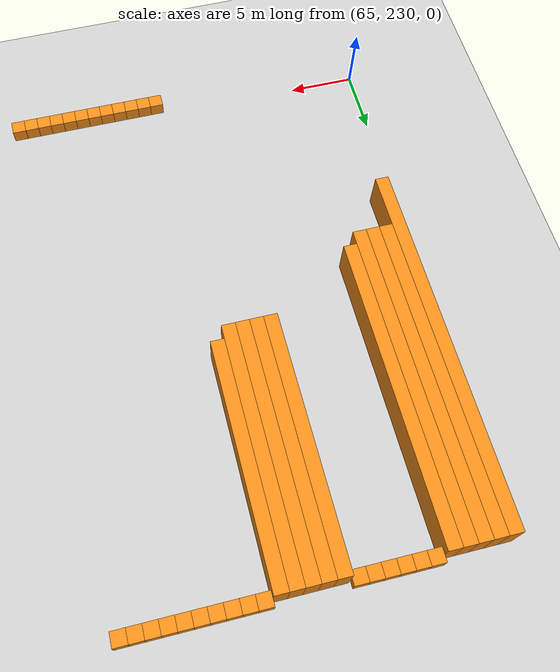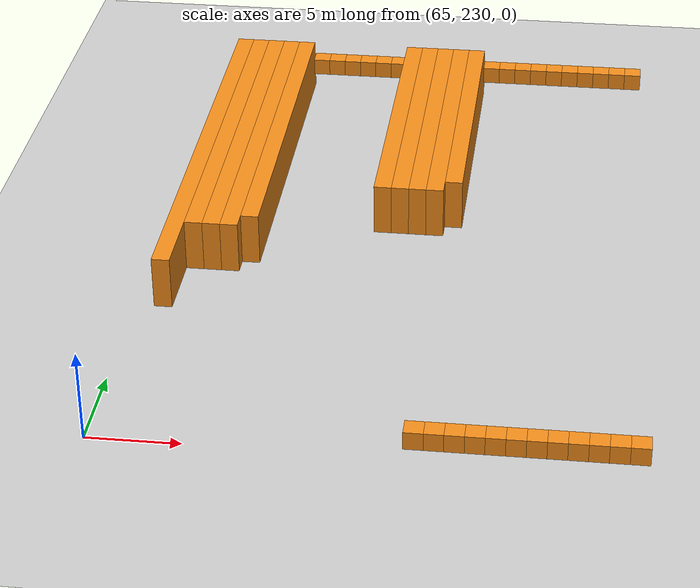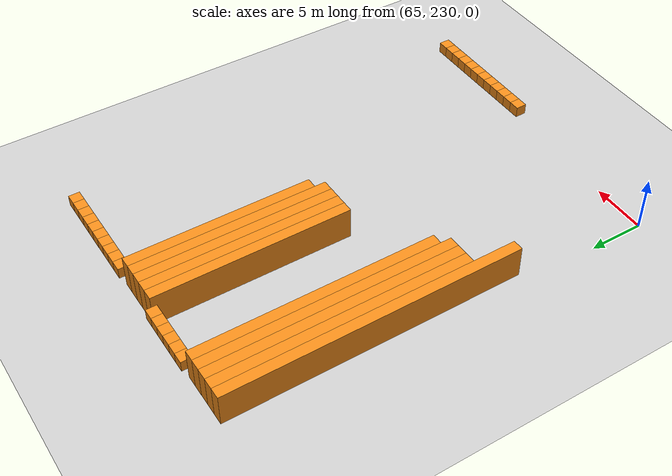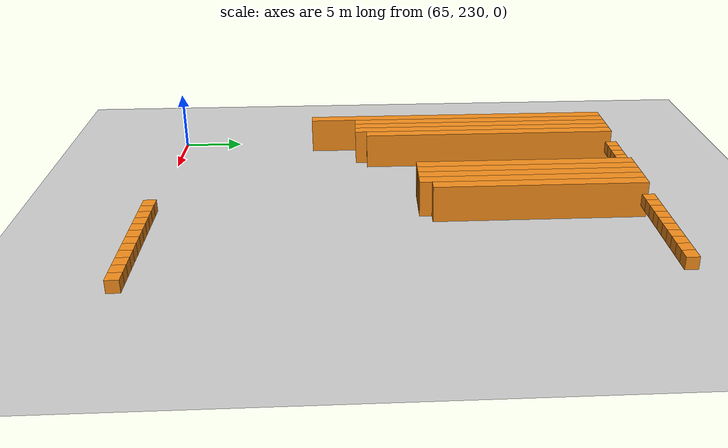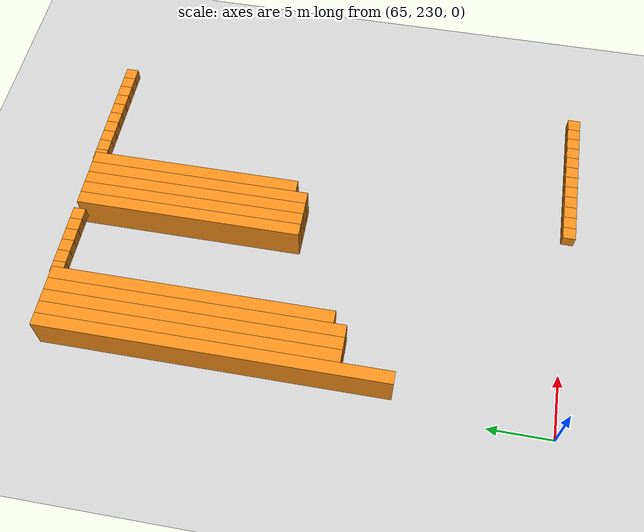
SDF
<sdf version="1.6">
 <world name="default">
  <include><uri>model://ground_plane</uri></include>
  <model name="unit_box_722">
   <pose>66.50   255.50     1.50 0 0 0</pose>
   <static>1</static>
   <link name="link">
    <inertial>
     <mass>5000</mass>
     <inertia><ixx>200</ixx><ixy>0</ixy><ixz>0</ixz><iyy>200</iyy><iyz>0</iyz><izz>200</izz></inertia>
    </inertial>
    <collision name="collision"><geometry><box><size>1 27 3</size></box></geometry></collision>
    <visual name="visual">
     <geometry><box><size>1 27 3</size></box></geometry>
     <material>
      <script><name>Gazebo/Orange</name><uri>file://media/materials/scripts/gazebo.material</uri></script>
     </material>
    </visual>
   </link>
  </model>
  <model name="unit_box_732">
   <pose>67.50   257.50     1.50 0 0 0</pose>
   <static>1</static>
   <link name="link">
    <inertial>
     <mass>5000</mass>
     <inertia><ixx>200</ixx><ixy>0</ixy><ixz>0</ixz><iyy>200</iyy><iyz>0</iyz><izz>200</izz></inertia>
    </inertial>
    <collision name="collision"><geometry><box><size>1 23 3</size></box></geometry></collision>
    <visual name="visual">
     <geometry><box><size>1 23 3</size></box></geometry>
     <material>
      <script><name>Gazebo/Orange</name><uri>file://media/materials/scripts/gazebo.material</uri></script>
     </material>
    </visual>
   </link>
  </model>
  <model name="unit_box_742">
   <pose>68.50   257.50     1.50 0 0 0</pose>
   <static>1</static>
   <link name="link">
    <inertial>
     <mass>5000</mass>
     <inertia><ixx>200</ixx><ixy>0</ixy><ixz>0</ixz><iyy>200</iyy><iyz>0</iyz><izz>200</izz></inertia>
    </inertial>
    <collision name="collision"><geometry><box><size>1 23 3</size></box></geometry></collision>
    <visual name="visual">
     <geometry><box><size>1 23 3</size></box></geometry>
     <material>
      <script><name>Gazebo/Orange</name><uri>file://media/materials/scripts/gazebo.material</uri></script>
     </material>
    </visual>
   </link>
  </model>
  <model name="unit_box_752">
   <pose>69.50   257.50     1.50 0 0 0</pose>
   <static>1</static>
   <link name="link">
    <inertial>
     <mass>5000</mass>
     <inertia><ixx>200</ixx><ixy>0</ixy><ixz>0</ixz><iyy>200</iyy><iyz>0</iyz><izz>200</izz></inertia>
    </inertial>
    <collision name="collision"><geometry><box><size>1 23 3</size></box></geometry></collision>
    <visual name="visual">
     <geometry><box><size>1 23 3</size></box></geometry>
     <material>
      <script><name>Gazebo/Orange</name><uri>file://media/materials/scripts/gazebo.material</uri></script>
     </material>
    </visual>
   </link>
  </model>
  <model name="unit_box_763">
   <pose>70.50   258.00     1.50 0 0 0</pose>
   <static>1</static>
   <link name="link">
    <inertial>
     <mass>5000</mass>
     <inertia><ixx>200</ixx><ixy>0</ixy><ixz>0</ixz><iyy>200</iyy><iyz>0</iyz><izz>200</izz></inertia>
    </inertial>
    <collision name="collision"><geometry><box><size>1 22 3</size></box></geometry></collision>
    <visual name="visual">
     <geometry><box><size>1 22 3</size></box></geometry>
     <material>
      <script><name>Gazebo/Orange</name><uri>file://media/materials/scripts/gazebo.material</uri></script>
     </material>
    </visual>
   </link>
  </model>
  <model name="unit_box_774">
   <pose>71.50   269.00     1.50 0 0 0</pose>
   <static>1</static>
   <link name="link">
    <inertial>
     <mass>5000</mass>
     <inertia><ixx>200</ixx><ixy>0</ixy><ixz>0</ixz><iyy>200</iyy><iyz>0</iyz><izz>200</izz></inertia>
    </inertial>
    <collision name="collision"><geometry><box><size>1 1 1</size></box></geometry></collision>
    <visual name="visual">
     <geometry><box><size>1 1 1</size></box></geometry>
     <material>
      <script><name>Gazebo/Orange</name><uri>file://media/materials/scripts/gazebo.material</uri></script>
     </material>
    </visual>
   </link>
  </model>
  <model name="unit_box_783">
   <pose>72.50   269.00     1.50 0 0 0</pose>
   <static>1</static>
   <link name="link">
    <inertial>
     <mass>5000</mass>
     <inertia><ixx>200</ixx><ixy>0</ixy><ixz>0</ixz><iyy>200</iyy><iyz>0</iyz><izz>200</izz></inertia>
    </inertial>
    <collision name="collision"><geometry><box><size>1 1 1</size></box></geometry></collision>
    <visual name="visual">
     <geometry><box><size>1 1 1</size></box></geometry>
     <material>
      <script><name>Gazebo/Orange</name><uri>file://media/materials/scripts/gazebo.material</uri></script>
     </material>
    </visual>
   </link>
  </model>
  <model name="unit_box_790">
   <pose>73.50   269.00     1.50 0 0 0</pose>
   <static>1</static>
   <link name="link">
    <inertial>
     <mass>5000</mass>
     <inertia><ixx>200</ixx><ixy>0</ixy><ixz>0</ixz><iyy>200</iyy><iyz>0</iyz><izz>200</izz></inertia>
    </inertial>
    <collision name="collision"><geometry><box><size>1 1 1</size></box></geometry></collision>
    <visual name="visual">
     <geometry><box><size>1 1 1</size></box></geometry>
     <material>
      <script><name>Gazebo/Orange</name><uri>file://media/materials/scripts/gazebo.material</uri></script>
     </material>
    </visual>
   </link>
  </model>
  <model name="unit_box_797">
   <pose>74.50   269.00     1.50 0 0 0</pose>
   <static>1</static>
   <link name="link">
    <inertial>
     <mass>5000</mass>
     <inertia><ixx>200</ixx><ixy>0</ixy><ixz>0</ixz><iyy>200</iyy><iyz>0</iyz><izz>200</izz></inertia>
    </inertial>
    <collision name="collision"><geometry><box><size>1 1 1</size></box></geometry></collision>
    <visual name="visual">
     <geometry><box><size>1 1 1</size></box></geometry>
     <material>
      <script><name>Gazebo/Orange</name><uri>file://media/materials/scripts/gazebo.material</uri></script>
     </material>
    </visual>
   </link>
  </model>
  <model name="unit_box_803">
   <pose>75.50   269.00     1.50 0 0 0</pose>
   <static>1</static>
   <link name="link">
    <inertial>
     <mass>5000</mass>
     <inertia><ixx>200</ixx><ixy>0</ixy><ixz>0</ixz><iyy>200</iyy><iyz>0</iyz><izz>200</izz></inertia>
    </inertial>
    <collision name="collision"><geometry><box><size>1 1 1</size></box></geometry></collision>
    <visual name="visual">
     <geometry><box><size>1 1 1</size></box></geometry>
     <material>
      <script><name>Gazebo/Orange</name><uri>file://media/materials/scripts/gazebo.material</uri></script>
     </material>
    </visual>
   </link>
  </model>
  <model name="unit_box_809">
   <pose>76.50   269.00     1.50 0 0 0</pose>
   <static>1</static>
   <link name="link">
    <inertial>
     <mass>5000</mass>
     <inertia><ixx>200</ixx><ixy>0</ixy><ixz>0</ixz><iyy>200</iyy><iyz>0</iyz><izz>200</izz></inertia>
    </inertial>
    <collision name="collision"><geometry><box><size>1 1 1</size></box></geometry></collision>
    <visual name="visual">
     <geometry><box><size>1 1 1</size></box></geometry>
     <material>
      <script><name>Gazebo/Orange</name><uri>file://media/materials/scripts/gazebo.material</uri></script>
     </material>
    </visual>
   </link>
  </model>
  <model name="unit_box_815">
   <pose>77.50   260.00     1.50 0 0 0</pose>
   <static>1</static>
   <link name="link">
    <inertial>
     <mass>5000</mass>
     <inertia><ixx>200</ixx><ixy>0</ixy><ixz>0</ixz><iyy>200</iyy><iyz>0</iyz><izz>200</izz></inertia>
    </inertial>
    <collision name="collision"><geometry><box><size>1 18 3</size></box></geometry></collision>
    <visual name="visual">
     <geometry><box><size>1 18 3</size></box></geometry>
     <material>
      <script><name>Gazebo/Orange</name><uri>file://media/materials/scripts/gazebo.material</uri></script>
     </material>
    </visual>
   </link>
  </model>
  <model name="unit_box_822">
   <pose>78.50   260.00     1.50 0 0 0</pose>
   <static>1</static>
   <link name="link">
    <inertial>
     <mass>5000</mass>
     <inertia><ixx>200</ixx><ixy>0</ixy><ixz>0</ixz><iyy>200</iyy><iyz>0</iyz><izz>200</izz></inertia>
    </inertial>
    <collision name="collision"><geometry><box><size>1 18 3</size></box></geometry></collision>
    <visual name="visual">
     <geometry><box><size>1 18 3</size></box></geometry>
     <material>
      <script><name>Gazebo/Orange</name><uri>file://media/materials/scripts/gazebo.material</uri></script>
     </material>
    </visual>
   </link>
  </model>
  <model name="unit_box_829">
   <pose>79.50   260.00     1.50 0 0 0</pose>
   <static>1</static>
   <link name="link">
    <inertial>
     <mass>5000</mass>
     <inertia><ixx>200</ixx><ixy>0</ixy><ixz>0</ixz><iyy>200</iyy><iyz>0</iyz><izz>200</izz></inertia>
    </inertial>
    <collision name="collision"><geometry><box><size>1 18 3</size></box></geometry></collision>
    <visual name="visual">
     <geometry><box><size>1 18 3</size></box></geometry>
     <material>
      <script><name>Gazebo/Orange</name><uri>file://media/materials/scripts/gazebo.material</uri></script>
     </material>
    </visual>
   </link>
  </model>
  <model name="unit_box_836">
   <pose>80.50   260.00     1.50 0 0 0</pose>
   <static>1</static>
   <link name="link">
    <inertial>
     <mass>5000</mass>
     <inertia><ixx>200</ixx><ixy>0</ixy><ixz>0</ixz><iyy>200</iyy><iyz>0</iyz><izz>200</izz></inertia>
    </inertial>
    <collision name="collision"><geometry><box><size>1 18 3</size></box></geometry></collision>
    <visual name="visual">
     <geometry><box><size>1 18 3</size></box></geometry>
     <material>
      <script><name>Gazebo/Orange</name><uri>file://media/materials/scripts/gazebo.material</uri></script>
     </material>
    </visual>
   </link>
  </model>
  <model name="unit_box_850">
   <pose>81.50   230.00     1.50 0 0 0</pose>
   <static>1</static>
   <link name="link">
    <inertial>
     <mass>5000</mass>
     <inertia><ixx>200</ixx><ixy>0</ixy><ixz>0</ixz><iyy>200</iyy><iyz>0</iyz><izz>200</izz></inertia>
    </inertial>
    <collision name="collision"><geometry><box><size>1 1 1</size></box></geometry></collision>
    <visual name="visual">
     <geometry><box><size>1 1 1</size></box></geometry>
     <material>
      <script><name>Gazebo/Orange</name><uri>file://media/materials/scripts/gazebo.material</uri></script>
     </material>
    </visual>
   </link>
  </model>
  <model name="unit_box_851">
   <pose>81.50   260.50     1.50 0 0 0</pose>
   <static>1</static>
   <link name="link">
    <inertial>
     <mass>5000</mass>
     <inertia><ixx>200</ixx><ixy>0</ixy><ixz>0</ixz><iyy>200</iyy><iyz>0</iyz><izz>200</izz></inertia>
    </inertial>
    <collision name="collision"><geometry><box><size>1 17 3</size></box></geometry></collision>
    <visual name="visual">
     <geometry><box><size>1 17 3</size></box></geometry>
     <material>
      <script><name>Gazebo/Orange</name><uri>file://media/materials/scripts/gazebo.material</uri></script>
     </material>
    </visual>
   </link>
  </model>
  <model name="unit_box_864">
   <pose>82.50   230.00     1.50 0 0 0</pose>
   <static>1</static>
   <link name="link">
    <inertial>
     <mass>5000</mass>
     <inertia><ixx>200</ixx><ixy>0</ixy><ixz>0</ixz><iyy>200</iyy><iyz>0</iyz><izz>200</izz></inertia>
    </inertial>
    <collision name="collision"><geometry><box><size>1 1 1</size></box></geometry></collision>
    <visual name="visual">
     <geometry><box><size>1 1 1</size></box></geometry>
     <material>
      <script><name>Gazebo/Orange</name><uri>file://media/materials/scripts/gazebo.material</uri></script>
     </material>
    </visual>
   </link>
  </model>
  <model name="unit_box_865">
   <pose>82.50   269.00     1.50 0 0 0</pose>
   <static>1</static>
   <link name="link">
    <inertial>
     <mass>5000</mass>
     <inertia><ixx>200</ixx><ixy>0</ixy><ixz>0</ixz><iyy>200</iyy><iyz>0</iyz><izz>200</izz></inertia>
    </inertial>
    <collision name="collision"><geometry><box><size>1 1 1</size></box></geometry></collision>
    <visual name="visual">
     <geometry><box><size>1 1 1</size></box></geometry>
     <material>
      <script><name>Gazebo/Orange</name><uri>file://media/materials/scripts/gazebo.material</uri></script>
     </material>
    </visual>
   </link>
  </model>
  <model name="unit_box_877">
   <pose>83.50   230.00     1.50 0 0 0</pose>
   <static>1</static>
   <link name="link">
    <inertial>
     <mass>5000</mass>
     <inertia><ixx>200</ixx><ixy>0</ixy><ixz>0</ixz><iyy>200</iyy><iyz>0</iyz><izz>200</izz></inertia>
    </inertial>
    <collision name="collision"><geometry><box><size>1 1 1</size></box></geometry></collision>
    <visual name="visual">
     <geometry><box><size>1 1 1</size></box></geometry>
     <material>
      <script><name>Gazebo/Orange</name><uri>file://media/materials/scripts/gazebo.material</uri></script>
     </material>
    </visual>
   </link>
  </model>
  <model name="unit_box_878">
   <pose>83.50   269.00     1.50 0 0 0</pose>
   <static>1</static>
   <link name="link">
    <inertial>
     <mass>5000</mass>
     <inertia><ixx>200</ixx><ixy>0</ixy><ixz>0</ixz><iyy>200</iyy><iyz>0</iyz><izz>200</izz></inertia>
    </inertial>
    <collision name="collision"><geometry><box><size>1 1 1</size></box></geometry></collision>
    <visual name="visual">
     <geometry><box><size>1 1 1</size></box></geometry>
     <material>
      <script><name>Gazebo/Orange</name><uri>file://media/materials/scripts/gazebo.material</uri></script>
     </material>
    </visual>
   </link>
  </model>
  <model name="unit_box_887">
   <pose>84.50   230.00     1.50 0 0 0</pose>
   <static>1</static>
   <link name="link">
    <inertial>
     <mass>5000</mass>
     <inertia><ixx>200</ixx><ixy>0</ixy><ixz>0</ixz><iyy>200</iyy><iyz>0</iyz><izz>200</izz></inertia>
    </inertial>
    <collision name="collision"><geometry><box><size>1 1 1</size></box></geometry></collision>
    <visual name="visual">
     <geometry><box><size>1 1 1</size></box></geometry>
     <material>
      <script><name>Gazebo/Orange</name><uri>file://media/materials/scripts/gazebo.material</uri></script>
     </material>
    </visual>
   </link>
  </model>
  <model name="unit_box_888">
   <pose>84.50   269.00     1.50 0 0 0</pose>
   <static>1</static>
   <link name="link">
    <inertial>
     <mass>5000</mass>
     <inertia><ixx>200</ixx><ixy>0</ixy><ixz>0</ixz><iyy>200</iyy><iyz>0</iyz><izz>200</izz></inertia>
    </inertial>
    <collision name="collision"><geometry><box><size>1 1 1</size></box></geometry></collision>
    <visual name="visual">
     <geometry><box><size>1 1 1</size></box></geometry>
     <material>
      <script><name>Gazebo/Orange</name><uri>file://media/materials/scripts/gazebo.material</uri></script>
     </material>
    </visual>
   </link>
  </model>
  <model name="unit_box_894">
   <pose>85.50   230.00     1.50 0 0 0</pose>
   <static>1</static>
   <link name="link">
    <inertial>
     <mass>5000</mass>
     <inertia><ixx>200</ixx><ixy>0</ixy><ixz>0</ixz><iyy>200</iyy><iyz>0</iyz><izz>200</izz></inertia>
    </inertial>
    <collision name="collision"><geometry><box><size>1 1 1</size></box></geometry></collision>
    <visual name="visual">
     <geometry><box><size>1 1 1</size></box></geometry>
     <material>
      <script><name>Gazebo/Orange</name><uri>file://media/materials/scripts/gazebo.material</uri></script>
     </material>
    </visual>
   </link>
  </model>
  <model name="unit_box_895">
   <pose>85.50   269.00     1.50 0 0 0</pose>
   <static>1</static>
   <link name="link">
    <inertial>
     <mass>5000</mass>
     <inertia><ixx>200</ixx><ixy>0</ixy><ixz>0</ixz><iyy>200</iyy><iyz>0</iyz><izz>200</izz></inertia>
    </inertial>
    <collision name="collision"><geometry><box><size>1 1 1</size></box></geometry></collision>
    <visual name="visual">
     <geometry><box><size>1 1 1</size></box></geometry>
     <material>
      <script><name>Gazebo/Orange</name><uri>file://media/materials/scripts/gazebo.material</uri></script>
     </material>
    </visual>
   </link>
  </model>
  <model name="unit_box_901">
   <pose>86.50   230.00     1.50 0 0 0</pose>
   <static>1</static>
   <link name="link">
    <inertial>
     <mass>5000</mass>
     <inertia><ixx>200</ixx><ixy>0</ixy><ixz>0</ixz><iyy>200</iyy><iyz>0</iyz><izz>200</izz></inertia>
    </inertial>
    <collision name="collision"><geometry><box><size>1 1 1</size></box></geometry></collision>
    <visual name="visual">
     <geometry><box><size>1 1 1</size></box></geometry>
     <material>
      <script><name>Gazebo/Orange</name><uri>file://media/materials/scripts/gazebo.material</uri></script>
     </material>
    </visual>
   </link>
  </model>
  <model name="unit_box_902">
   <pose>86.50   269.00     1.50 0 0 0</pose>
   <static>1</static>
   <link name="link">
    <inertial>
     <mass>5000</mass>
     <inertia><ixx>200</ixx><ixy>0</ixy><ixz>0</ixz><iyy>200</iyy><iyz>0</iyz><izz>200</izz></inertia>
    </inertial>
    <collision name="collision"><geometry><box><size>1 1 1</size></box></geometry></collision>
    <visual name="visual">
     <geometry><box><size>1 1 1</size></box></geometry>
     <material>
      <script><name>Gazebo/Orange</name><uri>file://media/materials/scripts/gazebo.material</uri></script>
     </material>
    </visual>
   </link>
  </model>
  <model name="unit_box_908">
   <pose>87.50   230.00     1.50 0 0 0</pose>
   <static>1</static>
   <link name="link">
    <inertial>
     <mass>5000</mass>
     <inertia><ixx>200</ixx><ixy>0</ixy><ixz>0</ixz><iyy>200</iyy><iyz>0</iyz><izz>200</izz></inertia>
    </inertial>
    <collision name="collision"><geometry><box><size>1 1 1</size></box></geometry></collision>
    <visual name="visual">
     <geometry><box><size>1 1 1</size></box></geometry>
     <material>
      <script><name>Gazebo/Orange</name><uri>file://media/materials/scripts/gazebo.material</uri></script>
     </material>
    </visual>
   </link>
  </model>
  <model name="unit_box_909">
   <pose>87.50   269.00     1.50 0 0 0</pose>
   <static>1</static>
   <link name="link">
    <inertial>
     <mass>5000</mass>
     <inertia><ixx>200</ixx><ixy>0</ixy><ixz>0</ixz><iyy>200</iyy><iyz>0</iyz><izz>200</izz></inertia>
    </inertial>
    <collision name="collision"><geometry><box><size>1 1 1</size></box></geometry></collision>
    <visual name="visual">
     <geometry><box><size>1 1 1</size></box></geometry>
     <material>
      <script><name>Gazebo/Orange</name><uri>file://media/materials/scripts/gazebo.material</uri></script>
     </material>
    </visual>
   </link>
  </model>
  <model name="unit_box_915">
   <pose>88.50   230.00     1.50 0 0 0</pose>
   <static>1</static>
   <link name="link">
    <inertial>
     <mass>5000</mass>
     <inertia><ixx>200</ixx><ixy>0</ixy><ixz>0</ixz><iyy>200</iyy><iyz>0</iyz><izz>200</izz></inertia>
    </inertial>
    <collision name="collision"><geometry><box><size>1 1 1</size></box></geometry></collision>
    <visual name="visual">
     <geometry><box><size>1 1 1</size></box></geometry>
     <material>
      <script><name>Gazebo/Orange</name><uri>file://media/materials/scripts/gazebo.material</uri></script>
     </material>
    </visual>
   </link>
  </model>
  <model name="unit_box_916">
   <pose>88.50   269.00     1.50 0 0 0</pose>
   <static>1</static>
   <link name="link">
    <inertial>
     <mass>5000</mass>
     <inertia><ixx>200</ixx><ixy>0</ixy><ixz>0</ixz><iyy>200</iyy><iyz>0</iyz><izz>200</izz></inertia>
    </inertial>
    <collision name="collision"><geometry><box><size>1 1 1</size></box></geometry></collision>
    <visual name="visual">
     <geometry><box><size>1 1 1</size></box></geometry>
     <material>
      <script><name>Gazebo/Orange</name><uri>file://media/materials/scripts/gazebo.material</uri></script>
     </material>
    </visual>
   </link>
  </model>
  <model name="unit_box_923">
   <pose>89.50   230.00     1.50 0 0 0</pose>
   <static>1</static>
   <link name="link">
    <inertial>
     <mass>5000</mass>
     <inertia><ixx>200</ixx><ixy>0</ixy><ixz>0</ixz><iyy>200</iyy><iyz>0</iyz><izz>200</izz></inertia>
    </inertial>
    <collision name="collision"><geometry><box><size>1 1 1</size></box></geometry></collision>
    <visual name="visual">
     <geometry><box><size>1 1 1</size></box></geometry>
     <material>
      <script><name>Gazebo/Orange</name><uri>file://media/materials/scripts/gazebo.material</uri></script>
     </material>
    </visual>
   </link>
  </model>
  <model name="unit_box_924">
   <pose>89.50   269.00     1.50 0 0 0</pose>
   <static>1</static>
   <link name="link">
    <inertial>
     <mass>5000</mass>
     <inertia><ixx>200</ixx><ixy>0</ixy><ixz>0</ixz><iyy>200</iyy><iyz>0</iyz><izz>200</izz></inertia>
    </inertial>
    <collision name="collision"><geometry><box><size>1 1 1</size></box></geometry></collision>
    <visual name="visual">
     <geometry><box><size>1 1 1</size></box></geometry>
     <material>
      <script><name>Gazebo/Orange</name><uri>file://media/materials/scripts/gazebo.material</uri></script>
     </material>
    </visual>
   </link>
  </model>
  <model name="unit_box_931">
   <pose>90.50   230.00     1.50 0 0 0</pose>
   <static>1</static>
   <link name="link">
    <inertial>
     <mass>5000</mass>
     <inertia><ixx>200</ixx><ixy>0</ixy><ixz>0</ixz><iyy>200</iyy><iyz>0</iyz><izz>200</izz></inertia>
    </inertial>
    <collision name="collision"><geometry><box><size>1 1 1</size></box></geometry></collision>
    <visual name="visual">
     <geometry><box><size>1 1 1</size></box></geometry>
     <material>
      <script><name>Gazebo/Orange</name><uri>file://media/materials/scripts/gazebo.material</uri></script>
     </material>
    </visual>
   </link>
  </model>
  <model name="unit_box_932">
   <pose>90.50   269.00     1.50 0 0 0</pose>
   <static>1</static>
   <link name="link">
    <inertial>
     <mass>5000</mass>
     <inertia><ixx>200</ixx><ixy>0</ixy><ixz>0</ixz><iyy>200</iyy><iyz>0</iyz><izz>200</izz></inertia>
    </inertial>
    <collision name="collision"><geometry><box><size>1 1 1</size></box></geometry></collision>
    <visual name="visual">
     <geometry><box><size>1 1 1</size></box></geometry>
     <material>
      <script><name>Gazebo/Orange</name><uri>file://media/materials/scripts/gazebo.material</uri></script>
     </material>
    </visual>
   </link>
  </model>
  <model name="unit_box_940">
   <pose>91.50   230.00     1.50 0 0 0</pose>
   <static>1</static>
   <link name="link">
    <inertial>
     <mass>5000</mass>
     <inertia><ixx>200</ixx><ixy>0</ixy><ixz>0</ixz><iyy>200</iyy><iyz>0</iyz><izz>200</izz></inertia>
    </inertial>
    <collision name="collision"><geometry><box><size>1 1 1</size></box></geometry></collision>
    <visual name="visual">
     <geometry><box><size>1 1 1</size></box></geometry>
     <material>
      <script><name>Gazebo/Orange</name><uri>file://media/materials/scripts/gazebo.material</uri></script>
     </material>
    </visual>
   </link>
  </model>
  <model name="unit_box_941">
   <pose>91.50   269.00     1.50 0 0 0</pose>
   <static>1</static>
   <link name="link">
    <inertial>
     <mass>5000</mass>
     <inertia><ixx>200</ixx><ixy>0</ixy><ixz>0</ixz><iyy>200</iyy><iyz>0</iyz><izz>200</izz></inertia>
    </inertial>
    <collision name="collision"><geometry><box><size>1 1 1</size></box></geometry></collision>
    <visual name="visual">
     <geometry><box><size>1 1 1</size></box></geometry>
     <material>
      <script><name>Gazebo/Orange</name><uri>file://media/materials/scripts/gazebo.material</uri></script>
     </material>
    </visual>
   </link>
  </model>
  <model name="unit_box_948">
   <pose>92.50   230.00     1.50 0 0 0</pose>
   <static>1</static>
   <link name="link">
    <inertial>
     <mass>5000</mass>
     <inertia><ixx>200</ixx><ixy>0</ixy><ixz>0</ixz><iyy>200</iyy><iyz>0</iyz><izz>200</izz></inertia>
    </inertial>
    <collision name="collision"><geometry><box><size>1 1 1</size></box></geometry></collision>
    <visual name="visual">
     <geometry><box><size>1 1 1</size></box></geometry>
     <material>
      <script><name>Gazebo/Orange</name><uri>file://media/materials/scripts/gazebo.material</uri></script>
     </material>
    </visual>
   </link>
  </model>
 </world>
</sdf>
